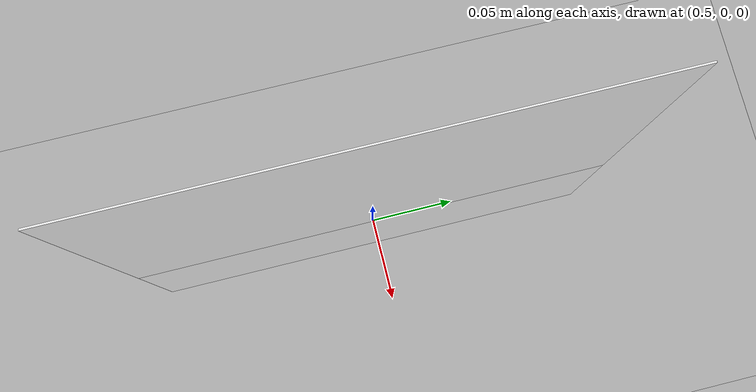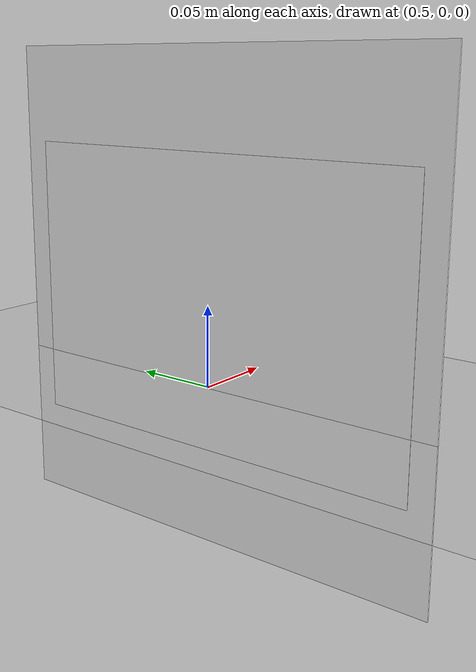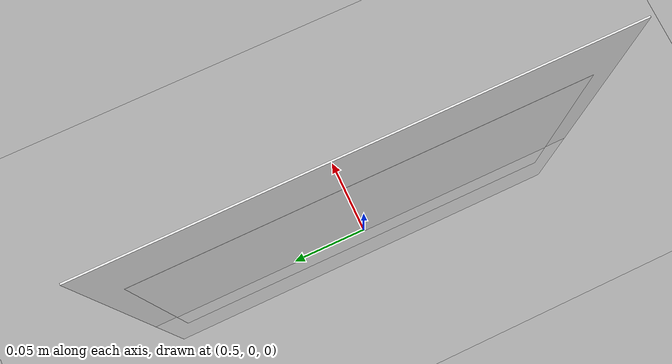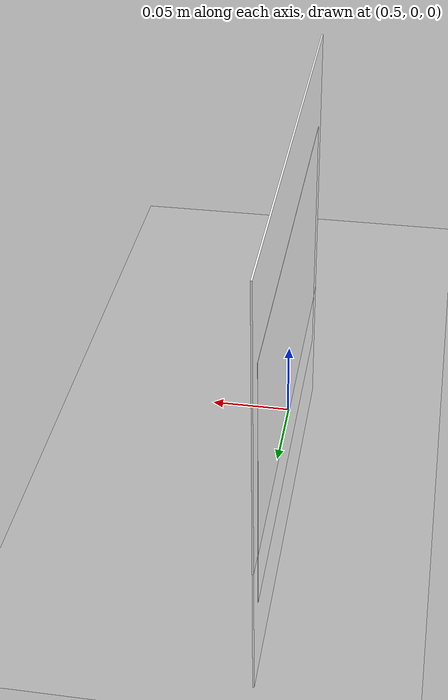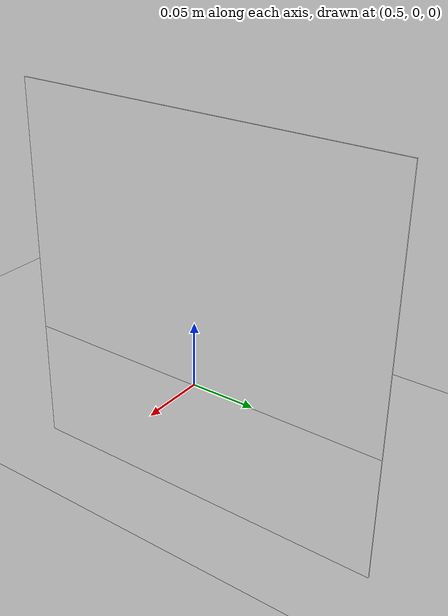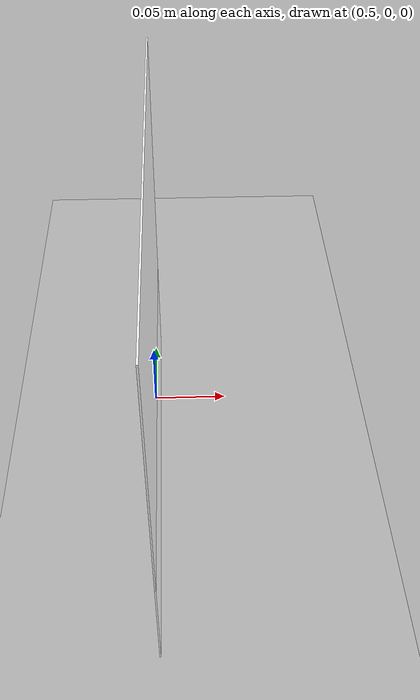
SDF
<sdf version="1.7">
 <world name="default">
  <light name="sun" type="directional">
   <pose>0 0 10 0 -0 0</pose>
   <diffuse>0.8 0.8 0.8 1</diffuse>
   <specular>0.2 0.2 0.2 1</specular>
   <attenuation>
    <range>1000</range>
    <constant>0.9</constant>
    <linear>0.01</linear>
    <quadratic>0.001</quadratic>
   </attenuation>
   <direction>-0.5 0.1 -0.9</direction>
   <spot><inner_angle>0</inner_angle><outer_angle>0</outer_angle><falloff>0</falloff></spot>
  </light>
  <include><name>chess</name><uri>model://chess</uri><pose>0.5 0 0.05 0 -3.14159 0</pose></include>
  <model name="ground_plane">
   <static>1</static>
   <link name="link">
    <collision name="collision">
     <geometry><plane><normal>0 0 1</normal><size>100 100</size></plane></geometry>
     <surface>
      <contact><collide_bitmask>65535</collide_bitmask></contact>
      <friction><ode><mu>100</mu><mu2>50</mu2></ode></friction>
     </surface>
    </collision>
    <visual name="visual">
     <cast_shadows>0</cast_shadows>
     <geometry><plane><normal>0 0 1</normal><size>100 100</size></plane></geometry>
     <material>
      <script><uri>file://media/materials/scripts/gazebo.material</uri><name>Gazebo/Grey</name></script>
     </material>
    </visual>
   </link>
  </model>
  <gravity>0 0 -9.8</gravity>
  <magnetic_field>6e-06 2.3e-05 -4.2e-05</magnetic_field>
  <atmosphere type="adiabatic"/>
  <physics type="ode">
   <max_step_size>0.001</max_step_size>
   <real_time_factor>1</real_time_factor>
   <real_time_update_rate>1000</real_time_update_rate>
  </physics>
  <scene><ambient>0.4 0.4 0.4 1</ambient><background>0.7 0.7 0.7 1</background><shadows>1</shadows></scene>
  <audio><device>default</device></audio>
  <spherical_coordinates>
   <surface_model>EARTH_WGS84</surface_model>
   <latitude_deg>0</latitude_deg>
   <longitude_deg>0</longitude_deg>
   <elevation>0</elevation>
   <heading_deg>0</heading_deg>
  </spherical_coordinates>
 </world>
</sdf>

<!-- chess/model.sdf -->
<sdf version="1.5">

    <model name='chess'>
        <pose>0 0 0 0 0 0</pose>
        <static>true</static>
        <link name='link'>
            <visual name='box_visual'>
                <cast_shadows>0</cast_shadows>
                    <geometry>
                        <box>
                            <size>0.001 0.3 0.3</size>
                        </box>
                    </geometry>
                <material>
                    <ambient>1 1 1 1</ambient>
                    <diffuse>1 1 1 1</diffuse>
                    <specular>1 1 1 1</specular>
                    <emissive>0.6 0.6 0.6 1</emissive>
                </material>
            </visual>

            <visual name='chess_v'>
                <cast_shadows>0</cast_shadows>
                <pose>0.00065 0.0 0.0 1.5708 0.0 1.5708</pose>
                <geometry>
                    <plane>
                        <normal>0 0 1</normal>
                        <size>0.27 0.18</size>
                    </plane>
                </geometry>
                <material>
                    <pbr>
                        <metal>
                            <albedo_map>model://chess/materials/textures/chess.png</albedo_map>
                            <metalness>0.01</metalness>
                            <roughness>0.99</roughness>
                        </metal>
                    </pbr>
                    <ambient>1 1 1 1</ambient>
                    <diffuse>1 1 1 1</diffuse>
                    <specular>1 1 1 1</specular>
                    <shininess> 1 </shininess>
                    <emissive>0.0 0.0 0.0 0.1</emissive>
                </material>
            </visual>

        </link>
    </model>
</sdf>
